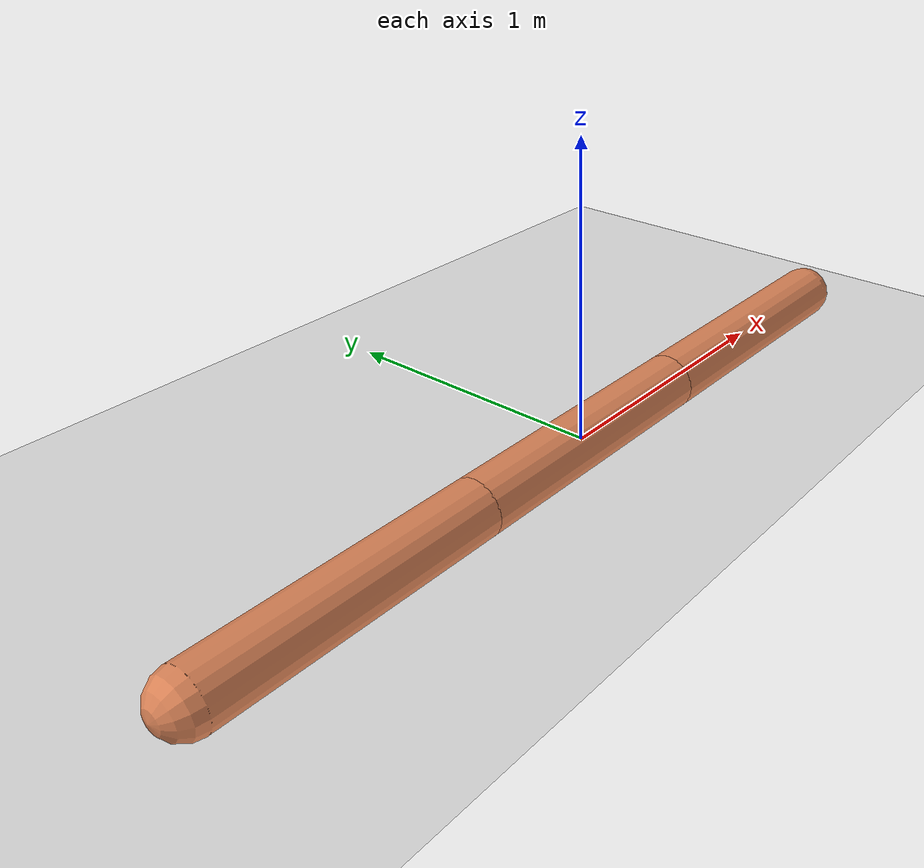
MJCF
<mujoco model="swimmer">
  <include file="scene.xml"/>
  <compiler angle="degree" coordinate="local" inertiafromgeom="true"/>
  <option gravity="0 0 -9.81" density="4000" integrator="RK4" timestep="0.01" viscosity="0.1"/>
  <default>
    <geom conaffinity="0" condim="1" contype="0" material="geom"/>
    <joint armature="0.1"/>
  </default>
  <worldbody>
    <geom condim="3" material="groundplane" name="floor" pos="0 0 -0.1" size="2 2 0.1" type="plane"/>
    <!--  ================= SWIMMER ================= /-->
    <body name="torso" pos="0 0 0">
      <camera name="track" mode="trackcom" pos="0 -3 3" xyaxes="1 0 0 0 1 1"/>
      <geom density="1000" fromto="1.5 0 0 0.5 0 0" size="0.1" type="capsule"/>
      <joint axis="1 0 0" name="slider1" pos="0 0 0" type="slide"/>
      <joint axis="0 1 0" name="slider2" pos="0 0 0" type="slide"/>
      <joint axis="0 0 1" name="free_body_rot" pos="0 0 0" type="hinge"/>
      <body name="mid" pos="0.5 0 0">
        <geom density="1000" fromto="0 0 0 -1 0 0" size="0.1" type="capsule"/>
        <joint axis="0 0 1" limited="true" name="motor1_rot" pos="0 0 0" range="-100 100" type="hinge"/>
        <body name="back" pos="-1 0 0">
          <geom density="1000" fromto="0 0 0 -1 0 0" size="0.1" type="capsule"/>
          <joint axis="0 0 1" limited="true" name="motor2_rot" pos="0 0 0" range="-100 100" type="hinge"/>
        </body>
      </body>
    </body>
  </worldbody>
  <actuator>
    <motor ctrllimited="true" ctrlrange="-1 1" gear="150.0" joint="motor1_rot"/>
    <motor ctrllimited="true" ctrlrange="-1 1" gear="150.0" joint="motor2_rot"/>
  </actuator>
</mujoco>

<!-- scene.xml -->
<mujoco model="robot scene">

  <statistic center="0 0 0.8" extent="2"/>

  <visual>
    <headlight diffuse="0.3 0.3 0.3" ambient="0.6 0.6 0.6" specular="0.2 0.2 0.2"/>
    <rgba haze="0.15 0.25 0.35 1"/>
    <global azimuth="120" elevation="-20"/>
  </visual>

  <asset>
    <!-- Solid gray skybox -->
    <texture type="skybox" builtin="flat" rgb1="0.5 0.5 0.5" width="1" height="1"/>

    <!-- Ground texture remains the same -->
    <texture type="2d" name="groundplane" builtin="checker" mark="cross" rgb1="0.84 0.84 0.84" rgb2="0.89 0.89 0.89"
      markrgb="0.4 0.4 0.4" width="300" height="300"/>
    <material name="groundplane" texture="groundplane" texuniform="true" texrepeat="5 5" reflectance="0.05" shininess="0.5" />

    <!-- Geom materials -->
    <texture builtin="flat" height="128" mark="cross" markrgb="1 1 1" name="texgeom" random="0.01" rgb1="0.85490197 0.5137255  0.34" rgb2="0.87 0.66 0.47" type="cube" width="128"/>
    <material name="geom" texture="texgeom" texuniform="true"/>

    <texture builtin="flat" height="128" mark="cross" markrgb="1 1 1" name="fixed-geom-text" random="0.01" rgb1="0.65 0.65 0.65" rgb2="0.4 0.4 0.4" type="cube" width="128"/>
    <material name="fixed-geom-mat" texture="fixed-geom-text" texuniform="true"/>

  </asset>

  <worldbody>
    <light pos="1 -1 1.5" dir="-1 1 -1" diffuse="0.4 0.4 0.4" directional="true"/>
  </worldbody>
</mujoco>
